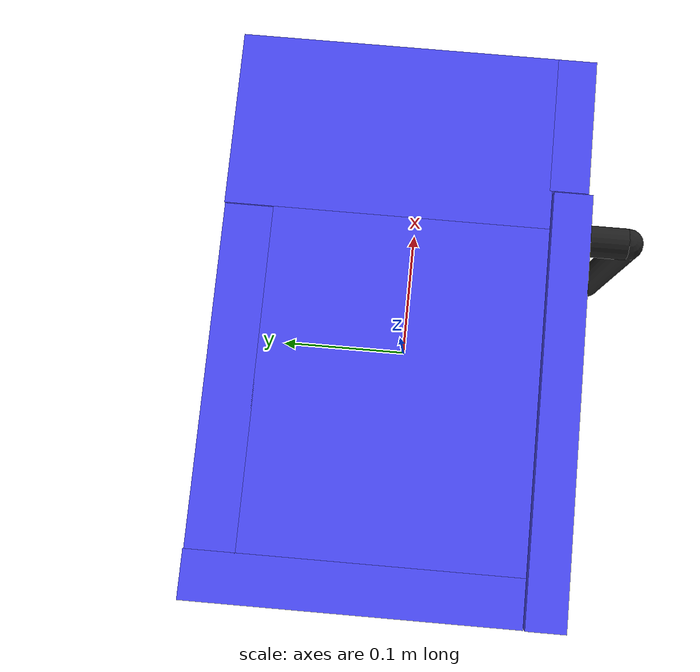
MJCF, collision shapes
<mujoco model="microwave">

    <compiler inertiafromgeom="auto" inertiagrouprange="4 4" angle="radian"/>
    <asset>
        <mesh file="microwave/meshes/micro.stl" name="micro" scale="0.5 0.5 0.5"/>
        <mesh file="microwave/meshes/microdoor.stl" name="microdoor" scale="0.5 0.5 0.5"/>
        <mesh file="microwave/meshes/microbutton.stl" name="microbutton" scale="0.5 0.5 0.5"/>
        <mesh file="microwave/meshes/microfeet.stl" name="microfeet" scale="0.5 0.5 0.5"/>
        <mesh file="microwave/meshes/microhandle.stl" name="microhandle" scale="0.5 0.5 0.5"/>
        <mesh file="microwave/meshes/microwindow.stl" name="microwindow" scale="0.5 0.5 0.5"/>

        <texture name="T_micro_metal" type="cube" height="1" width="1" file="microwave/textures/abstract.png"/>
        <texture name="T_micro_black" type="cube" height="1" width="1" file="microwave/textures/cabinet2.png"/>

        <material name="micro_metal" rgba="1 1 1 1" texture="T_micro_metal" texrepeat="3 3" reflectance="1" shininess="1" texuniform="false"/>
        <material name="micro_black" rgba="1 1 1 1" texture="T_micro_black" texrepeat="3 3" reflectance="1" shininess="1" texuniform="false"/>
        <material name="micro_window" rgba=".4 .4 .4 .25" reflectance="1" shininess="1"/>
        <material name="micro_collision_blue" rgba="0.3 0.3 1.0 0.5" shininess="0" specular="0"/>
    </asset>

    <default>
        <default class="microwave">A
            <geom conaffinity="0" contype="0" group="1" material="micro_metal" type="mesh"/>
        </default>

        <default class="micro_collision">
            <geom conaffinity="1" condim="3" contype="0" group="0" margin="0.001" material="micro_collision_blue" solimp=".8 .9 .01" solref=".02 1"/>
        </default>
    </default>

    <worldbody>
    <body>
        <body name="object">
            <geom class="microwave" mesh="micro"/>
            <geom class="microwave" material="micro_black" mesh="microbutton"/>
            <geom class="microwave" material="micro_black" mesh="microfeet"/>
	    <site rgba="1 0 0 0" type="box" pos="0.0 0.01 0.20" quat="1 0 0 0" size="0.12 0.0835 0.005" name="top_side"/>
	    <site rgba="1 0 0 0" type="box" pos="0.0 0.01 0.096" quat="1 0 0 0" size="0.12 0.0835 0.08" name="heating_region"/>
            <geom class="micro_collision" pos="-0.158 0.0115 0.0935" size="0.0145 0.09955 0.0935" type="box" mass=".5"/>
            <geom class="micro_collision" pos="0.118 0.0115 0.0935" size="0.0545 0.09955 0.0935" type="box" mass=".5"/>
            <geom class="micro_collision" pos="-0.0405 0.0955 0.0935" size="0.1035 0.015 0.0935" type="box" mass=".5"/>
            <geom class="micro_collision" pos="-0.04 -0.0035 0.1775" size="0.1035 0.0845 0.0095" type="box" mass=".5"/>
            <geom class="micro_collision" pos="-0.04 -0.004 0.012" size="0.1035 0.084 0.012" type="box" mass=".5"/>
            <geom class="micro_collision" pos="0.13 -0.0985 0.0935" size="0.0425 0.012 0.0935" type="box" mass=".5"/>
            <body name="microdoorroot" pos="-0.1725 -0.088 0.096">
                <joint type="hinge" axis="0 0 1" limited="true"
		       name="microjoint" range="-2.094 0" damping="0.5"/>
                <geom class="microwave" mesh="microdoor" pos="0.1725 0.088 -0.096"/>
                <geom class="microwave" material="micro_window" mesh="microwindow" pos="0.1725 0.088 -0.096"/>
                <geom class="microwave" material="micro_black" pos="0.2375 -0.054 0" size="0.01 0.065" type="capsule"/>
                <geom class="microwave" material="micro_black" euler="1.57 0 0" pos="0.2375 -0.0375 0.065" size="0.01 0.015" type="capsule"/>
                <geom class="microwave" material="micro_black" euler="1.57 0 0" pos="0.2375 -0.0375 -0.065" size="0.01 0.015" type="capsule"/>

                <geom class="micro_collision" pos="0.2375 -0.054 0" size="0.01 0.065" type="capsule" mass="0.020"/>
                <geom class="micro_collision" euler="1.57 0 0" pos="0.2375 -0.0375 .065" size="0.01 0.015" type="capsule" mass="0.020"/>
                <geom class="micro_collision" euler="1.57 0 0" pos="0.2375 -0.0375 -.065" size="0.01 0.015" type="capsule" mass="0.020"/>
                <geom class="micro_collision" pos="0.1295 -0.013 0" size="0.1295 0.012 0.0925" type="box" mass="0.20"/>
            </body>
        </body>
      <site rgba="0 0 0 0" size="0.005" pos="0 0 -0.06" name="bottom_site" />
      <site rgba="0 0 0 0" size="0.005" pos="0 0 0.06" name="top_site" />
      <site rgba="0 0 0 0" size="0.005" pos="0.2 0.2 0" name="horizontal_radius_site" />
    </body>
    </worldbody>

</mujoco>
